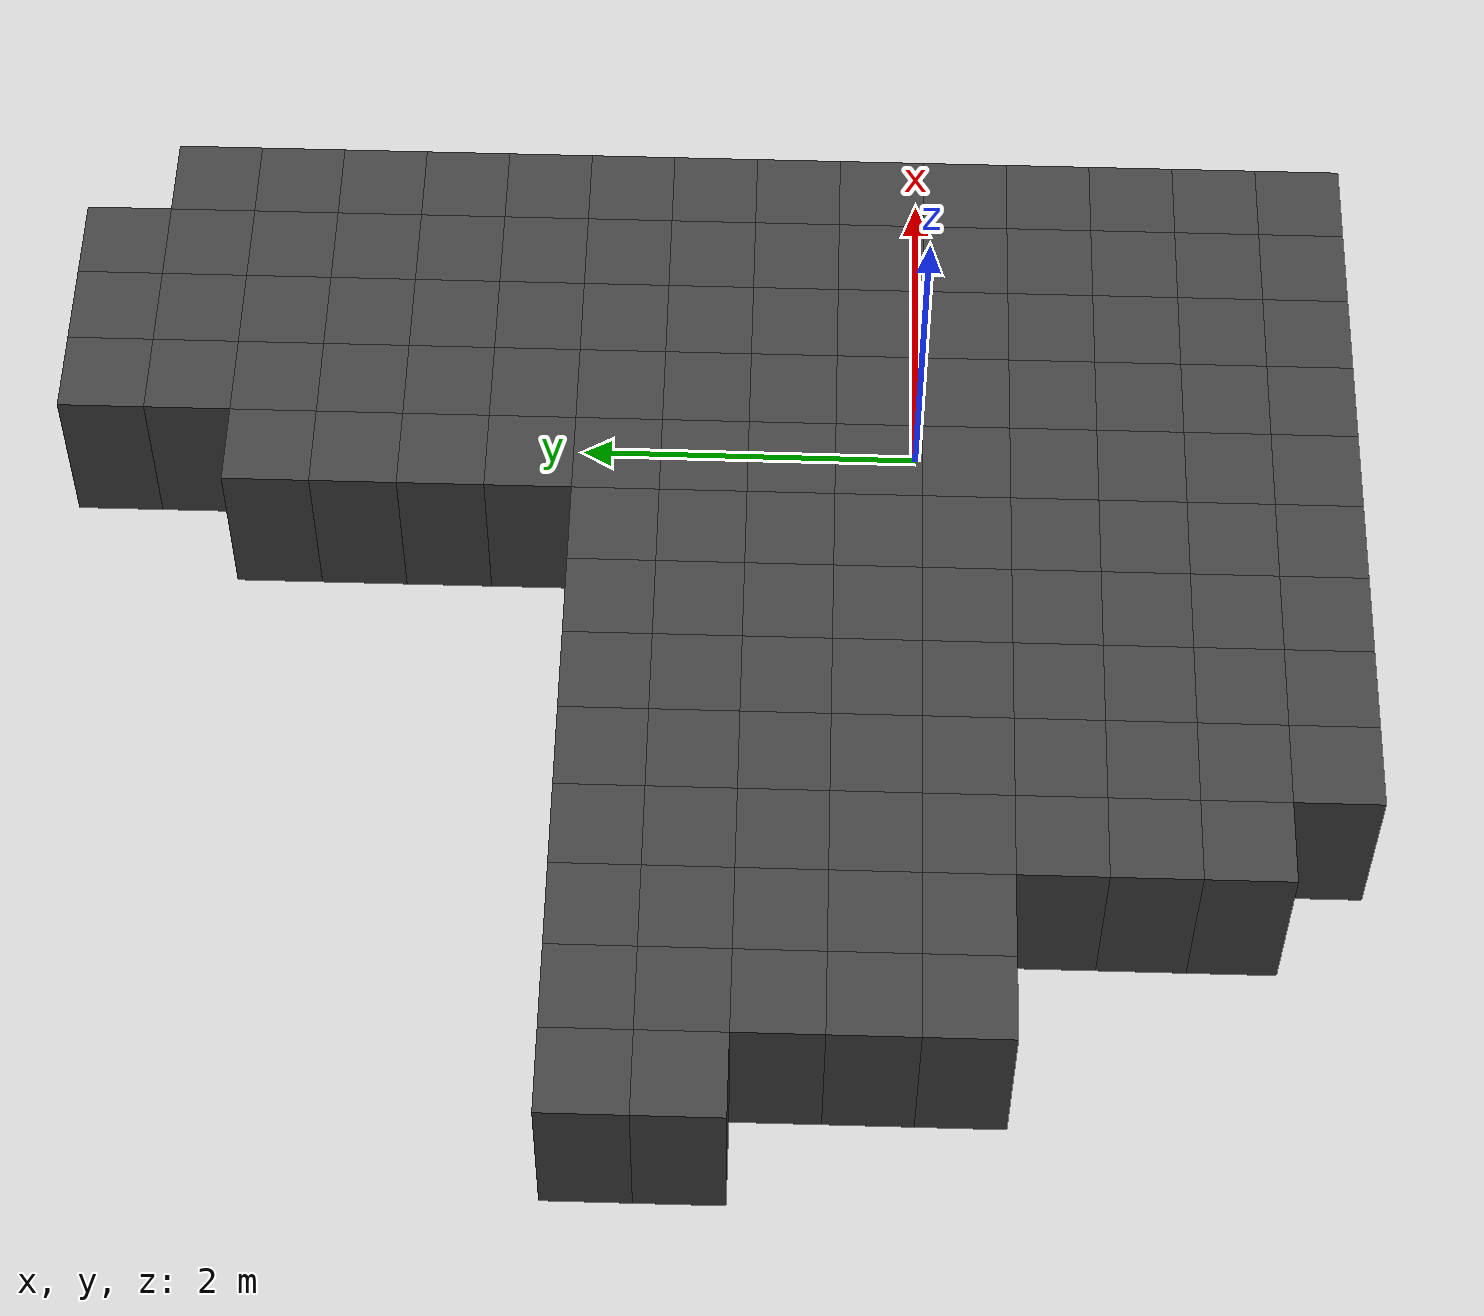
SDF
<sdf version="1.7">
 <world name="map_14494">
  <model name="ground_plane">
   <static>true</static>
   <link name="link">
    <collision name="collision">
     <geometry><plane><normal>0 0 1</normal><size>200 200</size></plane></geometry>
    </collision>
    <visual name="visual">
     <geometry><plane><normal>0 0 1</normal><size>200 200</size></plane></geometry>
     <material><ambient>0.8 0.8 0.8 1</ambient><diffuse>0.8 0.8 0.8 1</diffuse></material>
    </visual>
   </link>
  </model>
  <model name="maze_environment">
   <static>true</static>
   <link name="wall_548">
    <pose>-0.250 4.750 0.500 0 0 0</pose>
    <collision name="col"><geometry><box><size>0.5 0.5 1.0</size></box></geometry></collision>
    <visual name="vis">
     <geometry><box><size>0.5 0.5 1.0</size></box></geometry>
     <material><ambient>0.15 0.15 0.15 1</ambient><diffuse>0.25 0.25 0.25 1</diffuse></material>
    </visual>
   </link>
   <link name="wall_549">
    <pose>0.250 4.750 0.500 0 0 0</pose>
    <collision name="col"><geometry><box><size>0.5 0.5 1.0</size></box></geometry></collision>
    <visual name="vis">
     <geometry><box><size>0.5 0.5 1.0</size></box></geometry>
     <material><ambient>0.15 0.15 0.15 1</ambient><diffuse>0.25 0.25 0.25 1</diffuse></material>
    </visual>
   </link>
   <link name="wall_550">
    <pose>0.750 4.750 0.500 0 0 0</pose>
    <collision name="col"><geometry><box><size>0.5 0.5 1.0</size></box></geometry></collision>
    <visual name="vis">
     <geometry><box><size>0.5 0.5 1.0</size></box></geometry>
     <material><ambient>0.15 0.15 0.15 1</ambient><diffuse>0.25 0.25 0.25 1</diffuse></material>
    </visual>
   </link>
   <link name="wall_581">
    <pose>-0.250 4.250 0.500 0 0 0</pose>
    <collision name="col"><geometry><box><size>0.5 0.5 1.0</size></box></geometry></collision>
    <visual name="vis">
     <geometry><box><size>0.5 0.5 1.0</size></box></geometry>
     <material><ambient>0.15 0.15 0.15 1</ambient><diffuse>0.25 0.25 0.25 1</diffuse></material>
    </visual>
   </link>
   <link name="wall_582">
    <pose>0.250 4.250 0.500 0 0 0</pose>
    <collision name="col"><geometry><box><size>0.5 0.5 1.0</size></box></geometry></collision>
    <visual name="vis">
     <geometry><box><size>0.5 0.5 1.0</size></box></geometry>
     <material><ambient>0.15 0.15 0.15 1</ambient><diffuse>0.25 0.25 0.25 1</diffuse></material>
    </visual>
   </link>
   <link name="wall_583">
    <pose>0.750 4.250 0.500 0 0 0</pose>
    <collision name="col"><geometry><box><size>0.5 0.5 1.0</size></box></geometry></collision>
    <visual name="vis">
     <geometry><box><size>0.5 0.5 1.0</size></box></geometry>
     <material><ambient>0.15 0.15 0.15 1</ambient><diffuse>0.25 0.25 0.25 1</diffuse></material>
    </visual>
   </link>
   <link name="wall_584">
    <pose>1.250 4.250 0.500 0 0 0</pose>
    <collision name="col"><geometry><box><size>0.5 0.5 1.0</size></box></geometry></collision>
    <visual name="vis">
     <geometry><box><size>0.5 0.5 1.0</size></box></geometry>
     <material><ambient>0.15 0.15 0.15 1</ambient><diffuse>0.25 0.25 0.25 1</diffuse></material>
    </visual>
   </link>
   <link name="wall_613">
    <pose>-0.750 3.750 0.500 0 0 0</pose>
    <collision name="col"><geometry><box><size>0.5 0.5 1.0</size></box></geometry></collision>
    <visual name="vis">
     <geometry><box><size>0.5 0.5 1.0</size></box></geometry>
     <material><ambient>0.15 0.15 0.15 1</ambient><diffuse>0.25 0.25 0.25 1</diffuse></material>
    </visual>
   </link>
   <link name="wall_614">
    <pose>-0.250 3.750 0.500 0 0 0</pose>
    <collision name="col"><geometry><box><size>0.5 0.5 1.0</size></box></geometry></collision>
    <visual name="vis">
     <geometry><box><size>0.5 0.5 1.0</size></box></geometry>
     <material><ambient>0.15 0.15 0.15 1</ambient><diffuse>0.25 0.25 0.25 1</diffuse></material>
    </visual>
   </link>
   <link name="wall_615">
    <pose>0.250 3.750 0.500 0 0 0</pose>
    <collision name="col"><geometry><box><size>0.5 0.5 1.0</size></box></geometry></collision>
    <visual name="vis">
     <geometry><box><size>0.5 0.5 1.0</size></box></geometry>
     <material><ambient>0.15 0.15 0.15 1</ambient><diffuse>0.25 0.25 0.25 1</diffuse></material>
    </visual>
   </link>
   <link name="wall_616">
    <pose>0.750 3.750 0.500 0 0 0</pose>
    <collision name="col"><geometry><box><size>0.5 0.5 1.0</size></box></geometry></collision>
    <visual name="vis">
     <geometry><box><size>0.5 0.5 1.0</size></box></geometry>
     <material><ambient>0.15 0.15 0.15 1</ambient><diffuse>0.25 0.25 0.25 1</diffuse></material>
    </visual>
   </link>
   <link name="wall_617">
    <pose>1.250 3.750 0.500 0 0 0</pose>
    <collision name="col"><geometry><box><size>0.5 0.5 1.0</size></box></geometry></collision>
    <visual name="vis">
     <geometry><box><size>0.5 0.5 1.0</size></box></geometry>
     <material><ambient>0.15 0.15 0.15 1</ambient><diffuse>0.25 0.25 0.25 1</diffuse></material>
    </visual>
   </link>
   <link name="wall_647">
    <pose>-0.750 3.250 0.500 0 0 0</pose>
    <collision name="col"><geometry><box><size>0.5 0.5 1.0</size></box></geometry></collision>
    <visual name="vis">
     <geometry><box><size>0.5 0.5 1.0</size></box></geometry>
     <material><ambient>0.15 0.15 0.15 1</ambient><diffuse>0.25 0.25 0.25 1</diffuse></material>
    </visual>
   </link>
   <link name="wall_648">
    <pose>-0.250 3.250 0.500 0 0 0</pose>
    <collision name="col"><geometry><box><size>0.5 0.5 1.0</size></box></geometry></collision>
    <visual name="vis">
     <geometry><box><size>0.5 0.5 1.0</size></box></geometry>
     <material><ambient>0.15 0.15 0.15 1</ambient><diffuse>0.25 0.25 0.25 1</diffuse></material>
    </visual>
   </link>
   <link name="wall_649">
    <pose>0.250 3.250 0.500 0 0 0</pose>
    <collision name="col"><geometry><box><size>0.5 0.5 1.0</size></box></geometry></collision>
    <visual name="vis">
     <geometry><box><size>0.5 0.5 1.0</size></box></geometry>
     <material><ambient>0.15 0.15 0.15 1</ambient><diffuse>0.25 0.25 0.25 1</diffuse></material>
    </visual>
   </link>
   <link name="wall_650">
    <pose>0.750 3.250 0.500 0 0 0</pose>
    <collision name="col"><geometry><box><size>0.5 0.5 1.0</size></box></geometry></collision>
    <visual name="vis">
     <geometry><box><size>0.5 0.5 1.0</size></box></geometry>
     <material><ambient>0.15 0.15 0.15 1</ambient><diffuse>0.25 0.25 0.25 1</diffuse></material>
    </visual>
   </link>
   <link name="wall_651">
    <pose>1.250 3.250 0.500 0 0 0</pose>
    <collision name="col"><geometry><box><size>0.5 0.5 1.0</size></box></geometry></collision>
    <visual name="vis">
     <geometry><box><size>0.5 0.5 1.0</size></box></geometry>
     <material><ambient>0.15 0.15 0.15 1</ambient><diffuse>0.25 0.25 0.25 1</diffuse></material>
    </visual>
   </link>
   <link name="wall_682">
    <pose>-0.750 2.750 0.500 0 0 0</pose>
    <collision name="col"><geometry><box><size>0.5 0.5 1.0</size></box></geometry></collision>
    <visual name="vis">
     <geometry><box><size>0.5 0.5 1.0</size></box></geometry>
     <material><ambient>0.15 0.15 0.15 1</ambient><diffuse>0.25 0.25 0.25 1</diffuse></material>
    </visual>
   </link>
   <link name="wall_683">
    <pose>-0.250 2.750 0.500 0 0 0</pose>
    <collision name="col"><geometry><box><size>0.5 0.5 1.0</size></box></geometry></collision>
    <visual name="vis">
     <geometry><box><size>0.5 0.5 1.0</size></box></geometry>
     <material><ambient>0.15 0.15 0.15 1</ambient><diffuse>0.25 0.25 0.25 1</diffuse></material>
    </visual>
   </link>
   <link name="wall_684">
    <pose>0.250 2.750 0.500 0 0 0</pose>
    <collision name="col"><geometry><box><size>0.5 0.5 1.0</size></box></geometry></collision>
    <visual name="vis">
     <geometry><box><size>0.5 0.5 1.0</size></box></geometry>
     <material><ambient>0.15 0.15 0.15 1</ambient><diffuse>0.25 0.25 0.25 1</diffuse></material>
    </visual>
   </link>
   <link name="wall_685">
    <pose>0.750 2.750 0.500 0 0 0</pose>
    <collision name="col"><geometry><box><size>0.5 0.5 1.0</size></box></geometry></collision>
    <visual name="vis">
     <geometry><box><size>0.5 0.5 1.0</size></box></geometry>
     <material><ambient>0.15 0.15 0.15 1</ambient><diffuse>0.25 0.25 0.25 1</diffuse></material>
    </visual>
   </link>
   <link name="wall_686">
    <pose>1.250 2.750 0.500 0 0 0</pose>
    <collision name="col"><geometry><box><size>0.5 0.5 1.0</size></box></geometry></collision>
    <visual name="vis">
     <geometry><box><size>0.5 0.5 1.0</size></box></geometry>
     <material><ambient>0.15 0.15 0.15 1</ambient><diffuse>0.25 0.25 0.25 1</diffuse></material>
    </visual>
   </link>
   <link name="wall_717">
    <pose>-0.750 2.250 0.500 0 0 0</pose>
    <collision name="col"><geometry><box><size>0.5 0.5 1.0</size></box></geometry></collision>
    <visual name="vis">
     <geometry><box><size>0.5 0.5 1.0</size></box></geometry>
     <material><ambient>0.15 0.15 0.15 1</ambient><diffuse>0.25 0.25 0.25 1</diffuse></material>
    </visual>
   </link>
   <link name="wall_718">
    <pose>-0.250 2.250 0.500 0 0 0</pose>
    <collision name="col"><geometry><box><size>0.5 0.5 1.0</size></box></geometry></collision>
    <visual name="vis">
     <geometry><box><size>0.5 0.5 1.0</size></box></geometry>
     <material><ambient>0.15 0.15 0.15 1</ambient><diffuse>0.25 0.25 0.25 1</diffuse></material>
    </visual>
   </link>
   <link name="wall_719">
    <pose>0.250 2.250 0.500 0 0 0</pose>
    <collision name="col"><geometry><box><size>0.5 0.5 1.0</size></box></geometry></collision>
    <visual name="vis">
     <geometry><box><size>0.5 0.5 1.0</size></box></geometry>
     <material><ambient>0.15 0.15 0.15 1</ambient><diffuse>0.25 0.25 0.25 1</diffuse></material>
    </visual>
   </link>
   <link name="wall_720">
    <pose>0.750 2.250 0.500 0 0 0</pose>
    <collision name="col"><geometry><box><size>0.5 0.5 1.0</size></box></geometry></collision>
    <visual name="vis">
     <geometry><box><size>0.5 0.5 1.0</size></box></geometry>
     <material><ambient>0.15 0.15 0.15 1</ambient><diffuse>0.25 0.25 0.25 1</diffuse></material>
    </visual>
   </link>
   <link name="wall_721">
    <pose>1.250 2.250 0.500 0 0 0</pose>
    <collision name="col"><geometry><box><size>0.5 0.5 1.0</size></box></geometry></collision>
    <visual name="vis">
     <geometry><box><size>0.5 0.5 1.0</size></box></geometry>
     <material><ambient>0.15 0.15 0.15 1</ambient><diffuse>0.25 0.25 0.25 1</diffuse></material>
    </visual>
   </link>
   <link name="wall_752">
    <pose>-4.750 1.750 0.500 0 0 0</pose>
    <collision name="col"><geometry><box><size>0.5 0.5 1.0</size></box></geometry></collision>
    <visual name="vis">
     <geometry><box><size>0.5 0.5 1.0</size></box></geometry>
     <material><ambient>0.15 0.15 0.15 1</ambient><diffuse>0.25 0.25 0.25 1</diffuse></material>
    </visual>
   </link>
   <link name="wall_753">
    <pose>-4.250 1.750 0.500 0 0 0</pose>
    <collision name="col"><geometry><box><size>0.5 0.5 1.0</size></box></geometry></collision>
    <visual name="vis">
     <geometry><box><size>0.5 0.5 1.0</size></box></geometry>
     <material><ambient>0.15 0.15 0.15 1</ambient><diffuse>0.25 0.25 0.25 1</diffuse></material>
    </visual>
   </link>
   <link name="wall_754">
    <pose>-3.750 1.750 0.500 0 0 0</pose>
    <collision name="col"><geometry><box><size>0.5 0.5 1.0</size></box></geometry></collision>
    <visual name="vis">
     <geometry><box><size>0.5 0.5 1.0</size></box></geometry>
     <material><ambient>0.15 0.15 0.15 1</ambient><diffuse>0.25 0.25 0.25 1</diffuse></material>
    </visual>
   </link>
   <link name="wall_755">
    <pose>-3.250 1.750 0.500 0 0 0</pose>
    <collision name="col"><geometry><box><size>0.5 0.5 1.0</size></box></geometry></collision>
    <visual name="vis">
     <geometry><box><size>0.5 0.5 1.0</size></box></geometry>
     <material><ambient>0.15 0.15 0.15 1</ambient><diffuse>0.25 0.25 0.25 1</diffuse></material>
    </visual>
   </link>
   <link name="wall_756">
    <pose>-2.750 1.750 0.500 0 0 0</pose>
    <collision name="col"><geometry><box><size>0.5 0.5 1.0</size></box></geometry></collision>
    <visual name="vis">
     <geometry><box><size>0.5 0.5 1.0</size></box></geometry>
     <material><ambient>0.15 0.15 0.15 1</ambient><diffuse>0.25 0.25 0.25 1</diffuse></material>
    </visual>
   </link>
   <link name="wall_757">
    <pose>-2.250 1.750 0.500 0 0 0</pose>
    <collision name="col"><geometry><box><size>0.5 0.5 1.0</size></box></geometry></collision>
    <visual name="vis">
     <geometry><box><size>0.5 0.5 1.0</size></box></geometry>
     <material><ambient>0.15 0.15 0.15 1</ambient><diffuse>0.25 0.25 0.25 1</diffuse></material>
    </visual>
   </link>
   <link name="wall_758">
    <pose>-1.750 1.750 0.500 0 0 0</pose>
    <collision name="col"><geometry><box><size>0.5 0.5 1.0</size></box></geometry></collision>
    <visual name="vis">
     <geometry><box><size>0.5 0.5 1.0</size></box></geometry>
     <material><ambient>0.15 0.15 0.15 1</ambient><diffuse>0.25 0.25 0.25 1</diffuse></material>
    </visual>
   </link>
   <link name="wall_759">
    <pose>-1.250 1.750 0.500 0 0 0</pose>
    <collision name="col"><geometry><box><size>0.5 0.5 1.0</size></box></geometry></collision>
    <visual name="vis">
     <geometry><box><size>0.5 0.5 1.0</size></box></geometry>
     <material><ambient>0.15 0.15 0.15 1</ambient><diffuse>0.25 0.25 0.25 1</diffuse></material>
    </visual>
   </link>
   <link name="wall_760">
    <pose>-0.750 1.750 0.500 0 0 0</pose>
    <collision name="col"><geometry><box><size>0.5 0.5 1.0</size></box></geometry></collision>
    <visual name="vis">
     <geometry><box><size>0.5 0.5 1.0</size></box></geometry>
     <material><ambient>0.15 0.15 0.15 1</ambient><diffuse>0.25 0.25 0.25 1</diffuse></material>
    </visual>
   </link>
   <link name="wall_761">
    <pose>-0.250 1.750 0.500 0 0 0</pose>
    <collision name="col"><geometry><box><size>0.5 0.5 1.0</size></box></geometry></collision>
    <visual name="vis">
     <geometry><box><size>0.5 0.5 1.0</size></box></geometry>
     <material><ambient>0.15 0.15 0.15 1</ambient><diffuse>0.25 0.25 0.25 1</diffuse></material>
    </visual>
   </link>
   <link name="wall_762">
    <pose>0.250 1.750 0.500 0 0 0</pose>
    <collision name="col"><geometry><box><size>0.5 0.5 1.0</size></box></geometry></collision>
    <visual name="vis">
     <geometry><box><size>0.5 0.5 1.0</size></box></geometry>
     <material><ambient>0.15 0.15 0.15 1</ambient><diffuse>0.25 0.25 0.25 1</diffuse></material>
    </visual>
   </link>
   <link name="wall_763">
    <pose>0.750 1.750 0.500 0 0 0</pose>
    <collision name="col"><geometry><box><size>0.5 0.5 1.0</size></box></geometry></collision>
    <visual name="vis">
     <geometry><box><size>0.5 0.5 1.0</size></box></geometry>
     <material><ambient>0.15 0.15 0.15 1</ambient><diffuse>0.25 0.25 0.25 1</diffuse></material>
    </visual>
   </link>
   <link name="wall_764">
    <pose>1.250 1.750 0.500 0 0 0</pose>
    <collision name="col"><geometry><box><size>0.5 0.5 1.0</size></box></geometry></collision>
    <visual name="vis">
     <geometry><box><size>0.5 0.5 1.0</size></box></geometry>
     <material><ambient>0.15 0.15 0.15 1</ambient><diffuse>0.25 0.25 0.25 1</diffuse></material>
    </visual>
   </link>
   <link name="wall_795">
    <pose>-4.750 1.250 0.500 0 0 0</pose>
    <collision name="col"><geometry><box><size>0.5 0.5 1.0</size></box></geometry></collision>
    <visual name="vis">
     <geometry><box><size>0.5 0.5 1.0</size></box></geometry>
     <material><ambient>0.15 0.15 0.15 1</ambient><diffuse>0.25 0.25 0.25 1</diffuse></material>
    </visual>
   </link>
   <link name="wall_796">
    <pose>-4.250 1.250 0.500 0 0 0</pose>
    <collision name="col"><geometry><box><size>0.5 0.5 1.0</size></box></geometry></collision>
    <visual name="vis">
     <geometry><box><size>0.5 0.5 1.0</size></box></geometry>
     <material><ambient>0.15 0.15 0.15 1</ambient><diffuse>0.25 0.25 0.25 1</diffuse></material>
    </visual>
   </link>
   <link name="wall_797">
    <pose>-3.750 1.250 0.500 0 0 0</pose>
    <collision name="col"><geometry><box><size>0.5 0.5 1.0</size></box></geometry></collision>
    <visual name="vis">
     <geometry><box><size>0.5 0.5 1.0</size></box></geometry>
     <material><ambient>0.15 0.15 0.15 1</ambient><diffuse>0.25 0.25 0.25 1</diffuse></material>
    </visual>
   </link>
   <link name="wall_798">
    <pose>-3.250 1.250 0.500 0 0 0</pose>
    <collision name="col"><geometry><box><size>0.5 0.5 1.0</size></box></geometry></collision>
    <visual name="vis">
     <geometry><box><size>0.5 0.5 1.0</size></box></geometry>
     <material><ambient>0.15 0.15 0.15 1</ambient><diffuse>0.25 0.25 0.25 1</diffuse></material>
    </visual>
   </link>
   <link name="wall_799">
    <pose>-2.750 1.250 0.500 0 0 0</pose>
    <collision name="col"><geometry><box><size>0.5 0.5 1.0</size></box></geometry></collision>
    <visual name="vis">
     <geometry><box><size>0.5 0.5 1.0</size></box></geometry>
     <material><ambient>0.15 0.15 0.15 1</ambient><diffuse>0.25 0.25 0.25 1</diffuse></material>
    </visual>
   </link>
   <link name="wall_800">
    <pose>-2.250 1.250 0.500 0 0 0</pose>
    <collision name="col"><geometry><box><size>0.5 0.5 1.0</size></box></geometry></collision>
    <visual name="vis">
     <geometry><box><size>0.5 0.5 1.0</size></box></geometry>
     <material><ambient>0.15 0.15 0.15 1</ambient><diffuse>0.25 0.25 0.25 1</diffuse></material>
    </visual>
   </link>
   <link name="wall_801">
    <pose>-1.750 1.250 0.500 0 0 0</pose>
    <collision name="col"><geometry><box><size>0.5 0.5 1.0</size></box></geometry></collision>
    <visual name="vis">
     <geometry><box><size>0.5 0.5 1.0</size></box></geometry>
     <material><ambient>0.15 0.15 0.15 1</ambient><diffuse>0.25 0.25 0.25 1</diffuse></material>
    </visual>
   </link>
   <link name="wall_802">
    <pose>-1.250 1.250 0.500 0 0 0</pose>
    <collision name="col"><geometry><box><size>0.5 0.5 1.0</size></box></geometry></collision>
    <visual name="vis">
     <geometry><box><size>0.5 0.5 1.0</size></box></geometry>
     <material><ambient>0.15 0.15 0.15 1</ambient><diffuse>0.25 0.25 0.25 1</diffuse></material>
    </visual>
   </link>
   <link name="wall_803">
    <pose>-0.750 1.250 0.500 0 0 0</pose>
    <collision name="col"><geometry><box><size>0.5 0.5 1.0</size></box></geometry></collision>
    <visual name="vis">
     <geometry><box><size>0.5 0.5 1.0</size></box></geometry>
     <material><ambient>0.15 0.15 0.15 1</ambient><diffuse>0.25 0.25 0.25 1</diffuse></material>
    </visual>
   </link>
   <link name="wall_804">
    <pose>-0.250 1.250 0.500 0 0 0</pose>
    <collision name="col"><geometry><box><size>0.5 0.5 1.0</size></box></geometry></collision>
    <visual name="vis">
     <geometry><box><size>0.5 0.5 1.0</size></box></geometry>
     <material><ambient>0.15 0.15 0.15 1</ambient><diffuse>0.25 0.25 0.25 1</diffuse></material>
    </visual>
   </link>
   <link name="wall_805">
    <pose>0.250 1.250 0.500 0 0 0</pose>
    <collision name="col"><geometry><box><size>0.5 0.5 1.0</size></box></geometry></collision>
    <visual name="vis">
     <geometry><box><size>0.5 0.5 1.0</size></box></geometry>
     <material><ambient>0.15 0.15 0.15 1</ambient><diffuse>0.25 0.25 0.25 1</diffuse></material>
    </visual>
   </link>
   <link name="wall_806">
    <pose>0.750 1.250 0.500 0 0 0</pose>
    <collision name="col"><geometry><box><size>0.5 0.5 1.0</size></box></geometry></collision>
    <visual name="vis">
     <geometry><box><size>0.5 0.5 1.0</size></box></geometry>
     <material><ambient>0.15 0.15 0.15 1</ambient><diffuse>0.25 0.25 0.25 1</diffuse></material>
    </visual>
   </link>
   <link name="wall_807">
    <pose>1.250 1.250 0.500 0 0 0</pose>
    <collision name="col"><geometry><box><size>0.5 0.5 1.0</size></box></geometry></collision>
    <visual name="vis">
     <geometry><box><size>0.5 0.5 1.0</size></box></geometry>
     <material><ambient>0.15 0.15 0.15 1</ambient><diffuse>0.25 0.25 0.25 1</diffuse></material>
    </visual>
   </link>
   <link name="wall_839">
    <pose>-4.250 0.750 0.500 0 0 0</pose>
    <collision name="col"><geometry><box><size>0.5 0.5 1.0</size></box></geometry></collision>
    <visual name="vis">
     <geometry><box><size>0.5 0.5 1.0</size></box></geometry>
     <material><ambient>0.15 0.15 0.15 1</ambient><diffuse>0.25 0.25 0.25 1</diffuse></material>
    </visual>
   </link>
   <link name="wall_840">
    <pose>-3.750 0.750 0.500 0 0 0</pose>
    <collision name="col"><geometry><box><size>0.5 0.5 1.0</size></box></geometry></collision>
    <visual name="vis">
     <geometry><box><size>0.5 0.5 1.0</size></box></geometry>
     <material><ambient>0.15 0.15 0.15 1</ambient><diffuse>0.25 0.25 0.25 1</diffuse></material>
    </visual>
   </link>
   <link name="wall_841">
    <pose>-3.250 0.750 0.500 0 0 0</pose>
    <collision name="col"><geometry><box><size>0.5 0.5 1.0</size></box></geometry></collision>
    <visual name="vis">
     <geometry><box><size>0.5 0.5 1.0</size></box></geometry>
     <material><ambient>0.15 0.15 0.15 1</ambient><diffuse>0.25 0.25 0.25 1</diffuse></material>
    </visual>
   </link>
   <link name="wall_842">
    <pose>-2.750 0.750 0.500 0 0 0</pose>
    <collision name="col"><geometry><box><size>0.5 0.5 1.0</size></box></geometry></collision>
    <visual name="vis">
     <geometry><box><size>0.5 0.5 1.0</size></box></geometry>
     <material><ambient>0.15 0.15 0.15 1</ambient><diffuse>0.25 0.25 0.25 1</diffuse></material>
    </visual>
   </link>
   <link name="wall_843">
    <pose>-2.250 0.750 0.500 0 0 0</pose>
    <collision name="col"><geometry><box><size>0.5 0.5 1.0</size></box></geometry></collision>
    <visual name="vis">
     <geometry><box><size>0.5 0.5 1.0</size></box></geometry>
     <material><ambient>0.15 0.15 0.15 1</ambient><diffuse>0.25 0.25 0.25 1</diffuse></material>
    </visual>
   </link>
   <link name="wall_844">
    <pose>-1.750 0.750 0.500 0 0 0</pose>
    <collision name="col"><geometry><box><size>0.5 0.5 1.0</size></box></geometry></collision>
    <visual name="vis">
     <geometry><box><size>0.5 0.5 1.0</size></box></geometry>
     <material><ambient>0.15 0.15 0.15 1</ambient><diffuse>0.25 0.25 0.25 1</diffuse></material>
    </visual>
   </link>
   <link name="wall_845">
    <pose>-1.250 0.750 0.500 0 0 0</pose>
    <collision name="col"><geometry><box><size>0.5 0.5 1.0</size></box></geometry></collision>
    <visual name="vis">
     <geometry><box><size>0.5 0.5 1.0</size></box></geometry>
     <material><ambient>0.15 0.15 0.15 1</ambient><diffuse>0.25 0.25 0.25 1</diffuse></material>
    </visual>
   </link>
   <link name="wall_846">
    <pose>-0.750 0.750 0.500 0 0 0</pose>
    <collision name="col"><geometry><box><size>0.5 0.5 1.0</size></box></geometry></collision>
    <visual name="vis">
     <geometry><box><size>0.5 0.5 1.0</size></box></geometry>
     <material><ambient>0.15 0.15 0.15 1</ambient><diffuse>0.25 0.25 0.25 1</diffuse></material>
    </visual>
   </link>
   <link name="wall_847">
    <pose>-0.250 0.750 0.500 0 0 0</pose>
    <collision name="col"><geometry><box><size>0.5 0.5 1.0</size></box></geometry></collision>
    <visual name="vis">
     <geometry><box><size>0.5 0.5 1.0</size></box></geometry>
     <material><ambient>0.15 0.15 0.15 1</ambient><diffuse>0.25 0.25 0.25 1</diffuse></material>
    </visual>
   </link>
   <link name="wall_848">
    <pose>0.250 0.750 0.500 0 0 0</pose>
    <collision name="col"><geometry><box><size>0.5 0.5 1.0</size></box></geometry></collision>
    <visual name="vis">
     <geometry><box><size>0.5 0.5 1.0</size></box></geometry>
     <material><ambient>0.15 0.15 0.15 1</ambient><diffuse>0.25 0.25 0.25 1</diffuse></material>
    </visual>
   </link>
   <link name="wall_849">
    <pose>0.750 0.750 0.500 0 0 0</pose>
    <collision name="col"><geometry><box><size>0.5 0.5 1.0</size></box></geometry></collision>
    <visual name="vis">
     <geometry><box><size>0.5 0.5 1.0</size></box></geometry>
     <material><ambient>0.15 0.15 0.15 1</ambient><diffuse>0.25 0.25 0.25 1</diffuse></material>
    </visual>
   </link>
   <link name="wall_850">
    <pose>1.250 0.750 0.500 0 0 0</pose>
    <collision name="col"><geometry><box><size>0.5 0.5 1.0</size></box></geometry></collision>
    <visual name="vis">
     <geometry><box><size>0.5 0.5 1.0</size></box></geometry>
     <material><ambient>0.15 0.15 0.15 1</ambient><diffuse>0.25 0.25 0.25 1</diffuse></material>
    </visual>
   </link>
   <link name="wall_878">
    <pose>-4.250 0.250 0.500 0 0 0</pose>
    <collision name="col"><geometry><box><size>0.5 0.5 1.0</size></box></geometry></collision>
    <visual name="vis">
     <geometry><box><size>0.5 0.5 1.0</size></box></geometry>
     <material><ambient>0.15 0.15 0.15 1</ambient><diffuse>0.25 0.25 0.25 1</diffuse></material>
    </visual>
   </link>
   <link name="wall_879">
    <pose>-3.750 0.250 0.500 0 0 0</pose>
    <collision name="col"><geometry><box><size>0.5 0.5 1.0</size></box></geometry></collision>
    <visual name="vis">
     <geometry><box><size>0.5 0.5 1.0</size></box></geometry>
     <material><ambient>0.15 0.15 0.15 1</ambient><diffuse>0.25 0.25 0.25 1</diffuse></material>
    </visual>
   </link>
   <link name="wall_880">
    <pose>-3.250 0.250 0.500 0 0 0</pose>
    <collision name="col"><geometry><box><size>0.5 0.5 1.0</size></box></geometry></collision>
    <visual name="vis">
     <geometry><box><size>0.5 0.5 1.0</size></box></geometry>
     <material><ambient>0.15 0.15 0.15 1</ambient><diffuse>0.25 0.25 0.25 1</diffuse></material>
    </visual>
   </link>
   <link name="wall_881">
    <pose>-2.750 0.250 0.500 0 0 0</pose>
    <collision name="col"><geometry><box><size>0.5 0.5 1.0</size></box></geometry></collision>
    <visual name="vis">
     <geometry><box><size>0.5 0.5 1.0</size></box></geometry>
     <material><ambient>0.15 0.15 0.15 1</ambient><diffuse>0.25 0.25 0.25 1</diffuse></material>
    </visual>
   </link>
   <link name="wall_882">
    <pose>-2.250 0.250 0.500 0 0 0</pose>
    <collision name="col"><geometry><box><size>0.5 0.5 1.0</size></box></geometry></collision>
    <visual name="vis">
     <geometry><box><size>0.5 0.5 1.0</size></box></geometry>
     <material><ambient>0.15 0.15 0.15 1</ambient><diffuse>0.25 0.25 0.25 1</diffuse></material>
    </visual>
   </link>
   <link name="wall_883">
    <pose>-1.750 0.250 0.500 0 0 0</pose>
    <collision name="col"><geometry><box><size>0.5 0.5 1.0</size></box></geometry></collision>
    <visual name="vis">
     <geometry><box><size>0.5 0.5 1.0</size></box></geometry>
     <material><ambient>0.15 0.15 0.15 1</ambient><diffuse>0.25 0.25 0.25 1</diffuse></material>
    </visual>
   </link>
   <link name="wall_884">
    <pose>-1.250 0.250 0.500 0 0 0</pose>
    <collision name="col"><geometry><box><size>0.5 0.5 1.0</size></box></geometry></collision>
    <visual name="vis">
     <geometry><box><size>0.5 0.5 1.0</size></box></geometry>
     <material><ambient>0.15 0.15 0.15 1</ambient><diffuse>0.25 0.25 0.25 1</diffuse></material>
    </visual>
   </link>
   <link name="wall_885">
    <pose>-0.750 0.250 0.500 0 0 0</pose>
    <collision name="col"><geometry><box><size>0.5 0.5 1.0</size></box></geometry></collision>
    <visual name="vis">
     <geometry><box><size>0.5 0.5 1.0</size></box></geometry>
     <material><ambient>0.15 0.15 0.15 1</ambient><diffuse>0.25 0.25 0.25 1</diffuse></material>
    </visual>
   </link>
   <link name="wall_886">
    <pose>-0.250 0.250 0.500 0 0 0</pose>
    <collision name="col"><geometry><box><size>0.5 0.5 1.0</size></box></geometry></collision>
    <visual name="vis">
     <geometry><box><size>0.5 0.5 1.0</size></box></geometry>
     <material><ambient>0.15 0.15 0.15 1</ambient><diffuse>0.25 0.25 0.25 1</diffuse></material>
    </visual>
   </link>
   <link name="wall_887">
    <pose>0.250 0.250 0.500 0 0 0</pose>
    <collision name="col"><geometry><box><size>0.5 0.5 1.0</size></box></geometry></collision>
    <visual name="vis">
     <geometry><box><size>0.5 0.5 1.0</size></box></geometry>
     <material><ambient>0.15 0.15 0.15 1</ambient><diffuse>0.25 0.25 0.25 1</diffuse></material>
    </visual>
   </link>
   <link name="wall_888">
    <pose>0.750 0.250 0.500 0 0 0</pose>
    <collision name="col"><geometry><box><size>0.5 0.5 1.0</size></box></geometry></collision>
    <visual name="vis">
     <geometry><box><size>0.5 0.5 1.0</size></box></geometry>
     <material><ambient>0.15 0.15 0.15 1</ambient><diffuse>0.25 0.25 0.25 1</diffuse></material>
    </visual>
   </link>
   <link name="wall_889">
    <pose>1.250 0.250 0.500 0 0 0</pose>
    <collision name="col"><geometry><box><size>0.5 0.5 1.0</size></box></geometry></collision>
    <visual name="vis">
     <geometry><box><size>0.5 0.5 1.0</size></box></geometry>
     <material><ambient>0.15 0.15 0.15 1</ambient><diffuse>0.25 0.25 0.25 1</diffuse></material>
    </visual>
   </link>
   <link name="wall_923">
    <pose>-4.250 -0.250 0.500 0 0 0</pose>
    <collision name="col"><geometry><box><size>0.5 0.5 1.0</size></box></geometry></collision>
    <visual name="vis">
     <geometry><box><size>0.5 0.5 1.0</size></box></geometry>
     <material><ambient>0.15 0.15 0.15 1</ambient><diffuse>0.25 0.25 0.25 1</diffuse></material>
    </visual>
   </link>
   <link name="wall_924">
    <pose>-3.750 -0.250 0.500 0 0 0</pose>
    <collision name="col"><geometry><box><size>0.5 0.5 1.0</size></box></geometry></collision>
    <visual name="vis">
     <geometry><box><size>0.5 0.5 1.0</size></box></geometry>
     <material><ambient>0.15 0.15 0.15 1</ambient><diffuse>0.25 0.25 0.25 1</diffuse></material>
    </visual>
   </link>
   <link name="wall_925">
    <pose>-3.250 -0.250 0.500 0 0 0</pose>
    <collision name="col"><geometry><box><size>0.5 0.5 1.0</size></box></geometry></collision>
    <visual name="vis">
     <geometry><box><size>0.5 0.5 1.0</size></box></geometry>
     <material><ambient>0.15 0.15 0.15 1</ambient><diffuse>0.25 0.25 0.25 1</diffuse></material>
    </visual>
   </link>
   <link name="wall_926">
    <pose>-2.750 -0.250 0.500 0 0 0</pose>
    <collision name="col"><geometry><box><size>0.5 0.5 1.0</size></box></geometry></collision>
    <visual name="vis">
     <geometry><box><size>0.5 0.5 1.0</size></box></geometry>
     <material><ambient>0.15 0.15 0.15 1</ambient><diffuse>0.25 0.25 0.25 1</diffuse></material>
    </visual>
   </link>
   <link name="wall_927">
    <pose>-2.250 -0.250 0.500 0 0 0</pose>
    <collision name="col"><geometry><box><size>0.5 0.5 1.0</size></box></geometry></collision>
    <visual name="vis">
     <geometry><box><size>0.5 0.5 1.0</size></box></geometry>
     <material><ambient>0.15 0.15 0.15 1</ambient><diffuse>0.25 0.25 0.25 1</diffuse></material>
    </visual>
   </link>
   <link name="wall_928">
    <pose>-1.750 -0.250 0.500 0 0 0</pose>
    <collision name="col"><geometry><box><size>0.5 0.5 1.0</size></box></geometry></collision>
    <visual name="vis">
     <geometry><box><size>0.5 0.5 1.0</size></box></geometry>
     <material><ambient>0.15 0.15 0.15 1</ambient><diffuse>0.25 0.25 0.25 1</diffuse></material>
    </visual>
   </link>
   <link name="wall_929">
    <pose>-1.250 -0.250 0.500 0 0 0</pose>
    <collision name="col"><geometry><box><size>0.5 0.5 1.0</size></box></geometry></collision>
    <visual name="vis">
     <geometry><box><size>0.5 0.5 1.0</size></box></geometry>
     <material><ambient>0.15 0.15 0.15 1</ambient><diffuse>0.25 0.25 0.25 1</diffuse></material>
    </visual>
   </link>
   <link name="wall_930">
    <pose>-0.750 -0.250 0.500 0 0 0</pose>
    <collision name="col"><geometry><box><size>0.5 0.5 1.0</size></box></geometry></collision>
    <visual name="vis">
     <geometry><box><size>0.5 0.5 1.0</size></box></geometry>
     <material><ambient>0.15 0.15 0.15 1</ambient><diffuse>0.25 0.25 0.25 1</diffuse></material>
    </visual>
   </link>
   <link name="wall_931">
    <pose>-0.250 -0.250 0.500 0 0 0</pose>
    <collision name="col"><geometry><box><size>0.5 0.5 1.0</size></box></geometry></collision>
    <visual name="vis">
     <geometry><box><size>0.5 0.5 1.0</size></box></geometry>
     <material><ambient>0.15 0.15 0.15 1</ambient><diffuse>0.25 0.25 0.25 1</diffuse></material>
    </visual>
   </link>
   <link name="wall_932">
    <pose>0.250 -0.250 0.500 0 0 0</pose>
    <collision name="col"><geometry><box><size>0.5 0.5 1.0</size></box></geometry></collision>
    <visual name="vis">
     <geometry><box><size>0.5 0.5 1.0</size></box></geometry>
     <material><ambient>0.15 0.15 0.15 1</ambient><diffuse>0.25 0.25 0.25 1</diffuse></material>
    </visual>
   </link>
   <link name="wall_933">
    <pose>0.750 -0.250 0.500 0 0 0</pose>
    <collision name="col"><geometry><box><size>0.5 0.5 1.0</size></box></geometry></collision>
    <visual name="vis">
     <geometry><box><size>0.5 0.5 1.0</size></box></geometry>
     <material><ambient>0.15 0.15 0.15 1</ambient><diffuse>0.25 0.25 0.25 1</diffuse></material>
    </visual>
   </link>
   <link name="wall_934">
    <pose>1.250 -0.250 0.500 0 0 0</pose>
    <collision name="col"><geometry><box><size>0.5 0.5 1.0</size></box></geometry></collision>
    <visual name="vis">
     <geometry><box><size>0.5 0.5 1.0</size></box></geometry>
     <material><ambient>0.15 0.15 0.15 1</ambient><diffuse>0.25 0.25 0.25 1</diffuse></material>
    </visual>
   </link>
   <link name="wall_961">
    <pose>-3.250 -0.750 0.500 0 0 0</pose>
    <collision name="col"><geometry><box><size>0.5 0.5 1.0</size></box></geometry></collision>
    <visual name="vis">
     <geometry><box><size>0.5 0.5 1.0</size></box></geometry>
     <material><ambient>0.15 0.15 0.15 1</ambient><diffuse>0.25 0.25 0.25 1</diffuse></material>
    </visual>
   </link>
   <link name="wall_962">
    <pose>-2.750 -0.750 0.500 0 0 0</pose>
    <collision name="col"><geometry><box><size>0.5 0.5 1.0</size></box></geometry></collision>
    <visual name="vis">
     <geometry><box><size>0.5 0.5 1.0</size></box></geometry>
     <material><ambient>0.15 0.15 0.15 1</ambient><diffuse>0.25 0.25 0.25 1</diffuse></material>
    </visual>
   </link>
   <link name="wall_963">
    <pose>-2.250 -0.750 0.500 0 0 0</pose>
    <collision name="col"><geometry><box><size>0.5 0.5 1.0</size></box></geometry></collision>
    <visual name="vis">
     <geometry><box><size>0.5 0.5 1.0</size></box></geometry>
     <material><ambient>0.15 0.15 0.15 1</ambient><diffuse>0.25 0.25 0.25 1</diffuse></material>
    </visual>
   </link>
   <link name="wall_964">
    <pose>-1.750 -0.750 0.500 0 0 0</pose>
    <collision name="col"><geometry><box><size>0.5 0.5 1.0</size></box></geometry></collision>
    <visual name="vis">
     <geometry><box><size>0.5 0.5 1.0</size></box></geometry>
     <material><ambient>0.15 0.15 0.15 1</ambient><diffuse>0.25 0.25 0.25 1</diffuse></material>
    </visual>
   </link>
   <link name="wall_965">
    <pose>-1.250 -0.750 0.500 0 0 0</pose>
    <collision name="col"><geometry><box><size>0.5 0.5 1.0</size></box></geometry></collision>
    <visual name="vis">
     <geometry><box><size>0.5 0.5 1.0</size></box></geometry>
     <material><ambient>0.15 0.15 0.15 1</ambient><diffuse>0.25 0.25 0.25 1</diffuse></material>
    </visual>
   </link>
   <link name="wall_966">
    <pose>-0.750 -0.750 0.500 0 0 0</pose>
    <collision name="col"><geometry><box><size>0.5 0.5 1.0</size></box></geometry></collision>
    <visual name="vis">
     <geometry><box><size>0.5 0.5 1.0</size></box></geometry>
     <material><ambient>0.15 0.15 0.15 1</ambient><diffuse>0.25 0.25 0.25 1</diffuse></material>
    </visual>
   </link>
   <link name="wall_967">
    <pose>-0.250 -0.750 0.500 0 0 0</pose>
    <collision name="col"><geometry><box><size>0.5 0.5 1.0</size></box></geometry></collision>
    <visual name="vis">
     <geometry><box><size>0.5 0.5 1.0</size></box></geometry>
     <material><ambient>0.15 0.15 0.15 1</ambient><diffuse>0.25 0.25 0.25 1</diffuse></material>
    </visual>
   </link>
   <link name="wall_968">
    <pose>0.250 -0.750 0.500 0 0 0</pose>
    <collision name="col"><geometry><box><size>0.5 0.5 1.0</size></box></geometry></collision>
    <visual name="vis">
     <geometry><box><size>0.5 0.5 1.0</size></box></geometry>
     <material><ambient>0.15 0.15 0.15 1</ambient><diffuse>0.25 0.25 0.25 1</diffuse></material>
    </visual>
   </link>
   <link name="wall_969">
    <pose>0.750 -0.750 0.500 0 0 0</pose>
    <collision name="col"><geometry><box><size>0.5 0.5 1.0</size></box></geometry></collision>
    <visual name="vis">
     <geometry><box><size>0.5 0.5 1.0</size></box></geometry>
     <material><ambient>0.15 0.15 0.15 1</ambient><diffuse>0.25 0.25 0.25 1</diffuse></material>
    </visual>
   </link>
   <link name="wall_970">
    <pose>1.250 -0.750 0.500 0 0 0</pose>
    <collision name="col"><geometry><box><size>0.5 0.5 1.0</size></box></geometry></collision>
    <visual name="vis">
     <geometry><box><size>0.5 0.5 1.0</size></box></geometry>
     <material><ambient>0.15 0.15 0.15 1</ambient><diffuse>0.25 0.25 0.25 1</diffuse></material>
    </visual>
   </link>
   <link name="wall_997">
    <pose>-3.250 -1.250 0.500 0 0 0</pose>
    <collision name="col"><geometry><box><size>0.5 0.5 1.0</size></box></geometry></collision>
    <visual name="vis">
     <geometry><box><size>0.5 0.5 1.0</size></box></geometry>
     <material><ambient>0.15 0.15 0.15 1</ambient><diffuse>0.25 0.25 0.25 1</diffuse></material>
    </visual>
   </link>
   <link name="wall_998">
    <pose>-2.750 -1.250 0.500 0 0 0</pose>
    <collision name="col"><geometry><box><size>0.5 0.5 1.0</size></box></geometry></collision>
    <visual name="vis">
     <geometry><box><size>0.5 0.5 1.0</size></box></geometry>
     <material><ambient>0.15 0.15 0.15 1</ambient><diffuse>0.25 0.25 0.25 1</diffuse></material>
    </visual>
   </link>
   <link name="wall_999">
    <pose>-2.250 -1.250 0.500 0 0 0</pose>
    <collision name="col"><geometry><box><size>0.5 0.5 1.0</size></box></geometry></collision>
    <visual name="vis">
     <geometry><box><size>0.5 0.5 1.0</size></box></geometry>
     <material><ambient>0.15 0.15 0.15 1</ambient><diffuse>0.25 0.25 0.25 1</diffuse></material>
    </visual>
   </link>
   <link name="wall_1000">
    <pose>-1.750 -1.250 0.500 0 0 0</pose>
    <collision name="col"><geometry><box><size>0.5 0.5 1.0</size></box></geometry></collision>
    <visual name="vis">
     <geometry><box><size>0.5 0.5 1.0</size></box></geometry>
     <material><ambient>0.15 0.15 0.15 1</ambient><diffuse>0.25 0.25 0.25 1</diffuse></material>
    </visual>
   </link>
   <link name="wall_1001">
    <pose>-1.250 -1.250 0.500 0 0 0</pose>
    <collision name="col"><geometry><box><size>0.5 0.5 1.0</size></box></geometry></collision>
    <visual name="vis">
     <geometry><box><size>0.5 0.5 1.0</size></box></geometry>
     <material><ambient>0.15 0.15 0.15 1</ambient><diffuse>0.25 0.25 0.25 1</diffuse></material>
    </visual>
   </link>
   <link name="wall_1002">
    <pose>-0.750 -1.250 0.500 0 0 0</pose>
    <collision name="col"><geometry><box><size>0.5 0.5 1.0</size></box></geometry></collision>
    <visual name="vis">
     <geometry><box><size>0.5 0.5 1.0</size></box></geometry>
     <material><ambient>0.15 0.15 0.15 1</ambient><diffuse>0.25 0.25 0.25 1</diffuse></material>
    </visual>
   </link>
   <link name="wall_1003">
    <pose>-0.250 -1.250 0.500 0 0 0</pose>
    <collision name="col"><geometry><box><size>0.5 0.5 1.0</size></box></geometry></collision>
    <visual name="vis">
     <geometry><box><size>0.5 0.5 1.0</size></box></geometry>
     <material><ambient>0.15 0.15 0.15 1</ambient><diffuse>0.25 0.25 0.25 1</diffuse></material>
    </visual>
   </link>
   <link name="wall_1004">
    <pose>0.250 -1.250 0.500 0 0 0</pose>
    <collision name="col"><geometry><box><size>0.5 0.5 1.0</size></box></geometry></collision>
    <visual name="vis">
     <geometry><box><size>0.5 0.5 1.0</size></box></geometry>
     <material><ambient>0.15 0.15 0.15 1</ambient><diffuse>0.25 0.25 0.25 1</diffuse></material>
    </visual>
   </link>
   <link name="wall_1005">
    <pose>0.750 -1.250 0.500 0 0 0</pose>
    <collision name="col"><geometry><box><size>0.5 0.5 1.0</size></box></geometry></collision>
    <visual name="vis">
     <geometry><box><size>0.5 0.5 1.0</size></box></geometry>
     <material><ambient>0.15 0.15 0.15 1</ambient><diffuse>0.25 0.25 0.25 1</diffuse></material>
    </visual>
   </link>
   <link name="wall_1006">
    <pose>1.250 -1.250 0.500 0 0 0</pose>
    <collision name="col"><geometry><box><size>0.5 0.5 1.0</size></box></geometry></collision>
    <visual name="vis">
     <geometry><box><size>0.5 0.5 1.0</size></box></geometry>
     <material><ambient>0.15 0.15 0.15 1</ambient><diffuse>0.25 0.25 0.25 1</diffuse></material>
    </visual>
   </link>
   <link name="wall_1029">
    <pose>-3.250 -1.750 0.500 0 0 0</pose>
    <collision name="col"><geometry><box><size>0.5 0.5 1.0</size></box></geometry></collision>
    <visual name="vis">
     <geometry><box><size>0.5 0.5 1.0</size></box></geometry>
     <material><ambient>0.15 0.15 0.15 1</ambient><diffuse>0.25 0.25 0.25 1</diffuse></material>
    </visual>
   </link>
   <link name="wall_1030">
    <pose>-2.750 -1.750 0.500 0 0 0</pose>
    <collision name="col"><geometry><box><size>0.5 0.5 1.0</size></box></geometry></collision>
    <visual name="vis">
     <geometry><box><size>0.5 0.5 1.0</size></box></geometry>
     <material><ambient>0.15 0.15 0.15 1</ambient><diffuse>0.25 0.25 0.25 1</diffuse></material>
    </visual>
   </link>
   <link name="wall_1031">
    <pose>-2.250 -1.750 0.500 0 0 0</pose>
    <collision name="col"><geometry><box><size>0.5 0.5 1.0</size></box></geometry></collision>
    <visual name="vis">
     <geometry><box><size>0.5 0.5 1.0</size></box></geometry>
     <material><ambient>0.15 0.15 0.15 1</ambient><diffuse>0.25 0.25 0.25 1</diffuse></material>
    </visual>
   </link>
   <link name="wall_1032">
    <pose>-1.750 -1.750 0.500 0 0 0</pose>
    <collision name="col"><geometry><box><size>0.5 0.5 1.0</size></box></geometry></collision>
    <visual name="vis">
     <geometry><box><size>0.5 0.5 1.0</size></box></geometry>
     <material><ambient>0.15 0.15 0.15 1</ambient><diffuse>0.25 0.25 0.25 1</diffuse></material>
    </visual>
   </link>
   <link name="wall_1033">
    <pose>-1.250 -1.750 0.500 0 0 0</pose>
    <collision name="col"><geometry><box><size>0.5 0.5 1.0</size></box></geometry></collision>
    <visual name="vis">
     <geometry><box><size>0.5 0.5 1.0</size></box></geometry>
     <material><ambient>0.15 0.15 0.15 1</ambient><diffuse>0.25 0.25 0.25 1</diffuse></material>
    </visual>
   </link>
   <link name="wall_1034">
    <pose>-0.750 -1.750 0.500 0 0 0</pose>
    <collision name="col"><geometry><box><size>0.5 0.5 1.0</size></box></geometry></collision>
    <visual name="vis">
     <geometry><box><size>0.5 0.5 1.0</size></box></geometry>
     <material><ambient>0.15 0.15 0.15 1</ambient><diffuse>0.25 0.25 0.25 1</diffuse></material>
    </visual>
   </link>
   <link name="wall_1035">
    <pose>-0.250 -1.750 0.500 0 0 0</pose>
    <collision name="col"><geometry><box><size>0.5 0.5 1.0</size></box></geometry></collision>
    <visual name="vis">
     <geometry><box><size>0.5 0.5 1.0</size></box></geometry>
     <material><ambient>0.15 0.15 0.15 1</ambient><diffuse>0.25 0.25 0.25 1</diffuse></material>
    </visual>
   </link>
   <link name="wall_1036">
    <pose>0.250 -1.750 0.500 0 0 0</pose>
    <collision name="col"><geometry><box><size>0.5 0.5 1.0</size></box></geometry></collision>
    <visual name="vis">
     <geometry><box><size>0.5 0.5 1.0</size></box></geometry>
     <material><ambient>0.15 0.15 0.15 1</ambient><diffuse>0.25 0.25 0.25 1</diffuse></material>
    </visual>
   </link>
   <link name="wall_1037">
    <pose>0.750 -1.750 0.500 0 0 0</pose>
    <collision name="col"><geometry><box><size>0.5 0.5 1.0</size></box></geometry></collision>
    <visual name="vis">
     <geometry><box><size>0.5 0.5 1.0</size></box></geometry>
     <material><ambient>0.15 0.15 0.15 1</ambient><diffuse>0.25 0.25 0.25 1</diffuse></material>
    </visual>
   </link>
   <link name="wall_1038">
    <pose>1.250 -1.750 0.500 0 0 0</pose>
    <collision name="col"><geometry><box><size>0.5 0.5 1.0</size></box></geometry></collision>
    <visual name="vis">
     <geometry><box><size>0.5 0.5 1.0</size></box></geometry>
     <material><ambient>0.15 0.15 0.15 1</ambient><diffuse>0.25 0.25 0.25 1</diffuse></material>
    </visual>
   </link>
   <link name="wall_1062">
    <pose>-2.750 -2.250 0.500 0 0 0</pose>
    <collision name="col"><geometry><box><size>0.5 0.5 1.0</size></box></geometry></collision>
    <visual name="vis">
     <geometry><box><size>0.5 0.5 1.0</size></box></geometry>
     <material><ambient>0.15 0.15 0.15 1</ambient><diffuse>0.25 0.25 0.25 1</diffuse></material>
    </visual>
   </link>
   <link name="wall_1063">
    <pose>-2.250 -2.250 0.500 0 0 0</pose>
    <collision name="col"><geometry><box><size>0.5 0.5 1.0</size></box></geometry></collision>
    <visual name="vis">
     <geometry><box><size>0.5 0.5 1.0</size></box></geometry>
     <material><ambient>0.15 0.15 0.15 1</ambient><diffuse>0.25 0.25 0.25 1</diffuse></material>
    </visual>
   </link>
   <link name="wall_1064">
    <pose>-1.750 -2.250 0.500 0 0 0</pose>
    <collision name="col"><geometry><box><size>0.5 0.5 1.0</size></box></geometry></collision>
    <visual name="vis">
     <geometry><box><size>0.5 0.5 1.0</size></box></geometry>
     <material><ambient>0.15 0.15 0.15 1</ambient><diffuse>0.25 0.25 0.25 1</diffuse></material>
    </visual>
   </link>
   <link name="wall_1065">
    <pose>-1.250 -2.250 0.500 0 0 0</pose>
    <collision name="col"><geometry><box><size>0.5 0.5 1.0</size></box></geometry></collision>
    <visual name="vis">
     <geometry><box><size>0.5 0.5 1.0</size></box></geometry>
     <material><ambient>0.15 0.15 0.15 1</ambient><diffuse>0.25 0.25 0.25 1</diffuse></material>
    </visual>
   </link>
   <link name="wall_1066">
    <pose>-0.750 -2.250 0.500 0 0 0</pose>
    <collision name="col"><geometry><box><size>0.5 0.5 1.0</size></box></geometry></collision>
    <visual name="vis">
     <geometry><box><size>0.5 0.5 1.0</size></box></geometry>
     <material><ambient>0.15 0.15 0.15 1</ambient><diffuse>0.25 0.25 0.25 1</diffuse></material>
    </visual>
   </link>
   <link name="wall_1067">
    <pose>-0.250 -2.250 0.500 0 0 0</pose>
    <collision name="col"><geometry><box><size>0.5 0.5 1.0</size></box></geometry></collision>
    <visual name="vis">
     <geometry><box><size>0.5 0.5 1.0</size></box></geometry>
     <material><ambient>0.15 0.15 0.15 1</ambient><diffuse>0.25 0.25 0.25 1</diffuse></material>
    </visual>
   </link>
   <link name="wall_1068">
    <pose>0.250 -2.250 0.500 0 0 0</pose>
    <collision name="col"><geometry><box><size>0.5 0.5 1.0</size></box></geometry></collision>
    <visual name="vis">
     <geometry><box><size>0.5 0.5 1.0</size></box></geometry>
     <material><ambient>0.15 0.15 0.15 1</ambient><diffuse>0.25 0.25 0.25 1</diffuse></material>
    </visual>
   </link>
   <link name="wall_1069">
    <pose>0.750 -2.250 0.500 0 0 0</pose>
    <collision name="col"><geometry><box><size>0.5 0.5 1.0</size></box></geometry></collision>
    <visual name="vis">
     <geometry><box><size>0.5 0.5 1.0</size></box></geometry>
     <material><ambient>0.15 0.15 0.15 1</ambient><diffuse>0.25 0.25 0.25 1</diffuse></material>
    </visual>
   </link>
   <link name="wall_1070">
    <pose>1.250 -2.250 0.500 0 0 0</pose>
    <collision name="col"><geometry><box><size>0.5 0.5 1.0</size></box></geometry></collision>
    <visual name="vis">
     <geometry><box><size>0.5 0.5 1.0</size></box></geometry>
     <material><ambient>0.15 0.15 0.15 1</ambient><diffuse>0.25 0.25 0.25 1</diffuse></material>
    </visual>
   </link>
  </model>
 </world>
</sdf>
